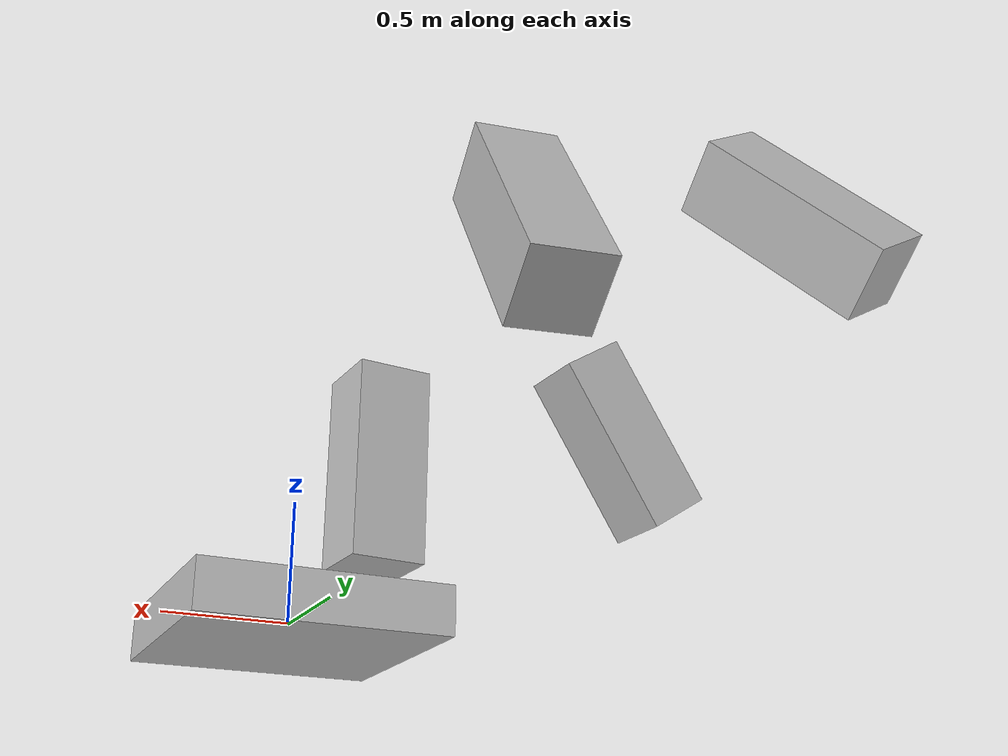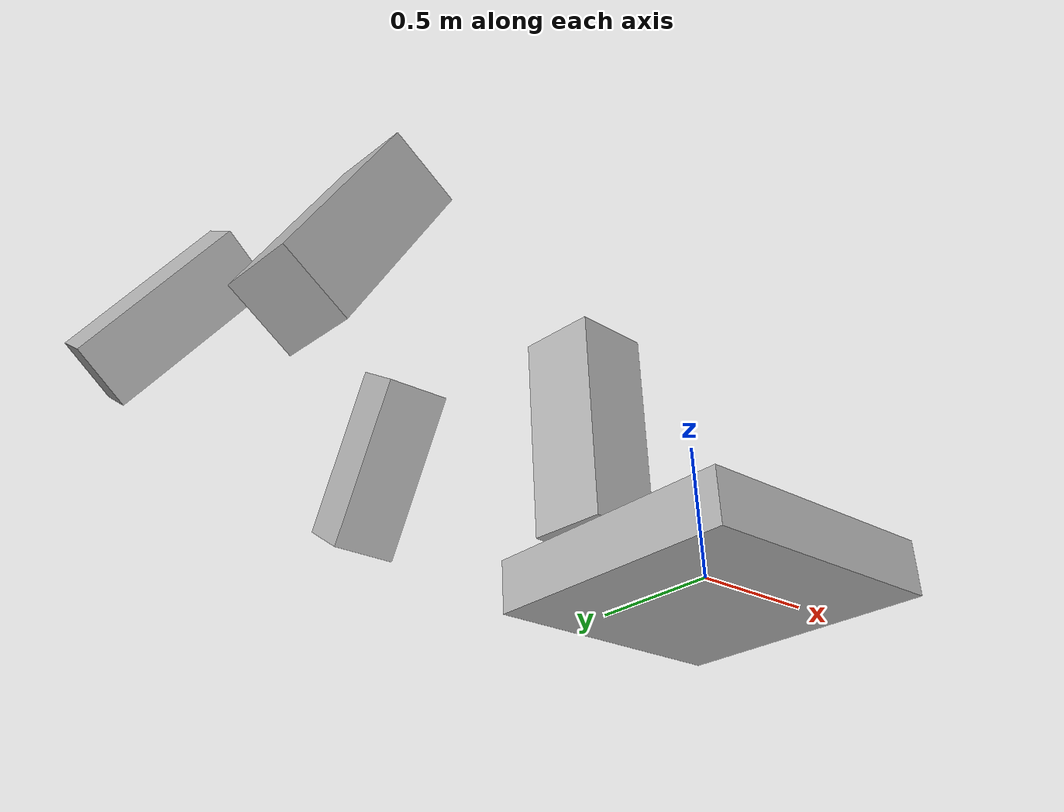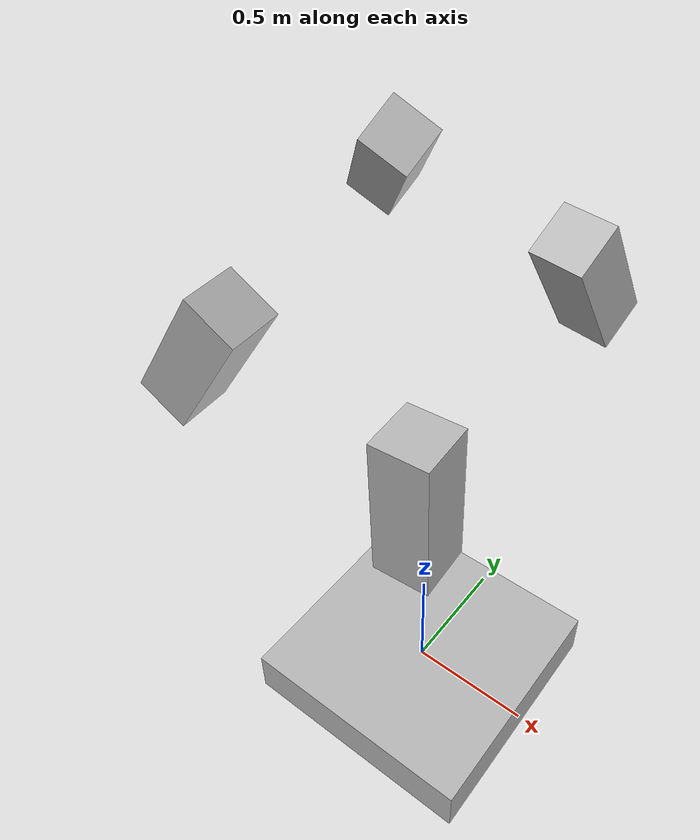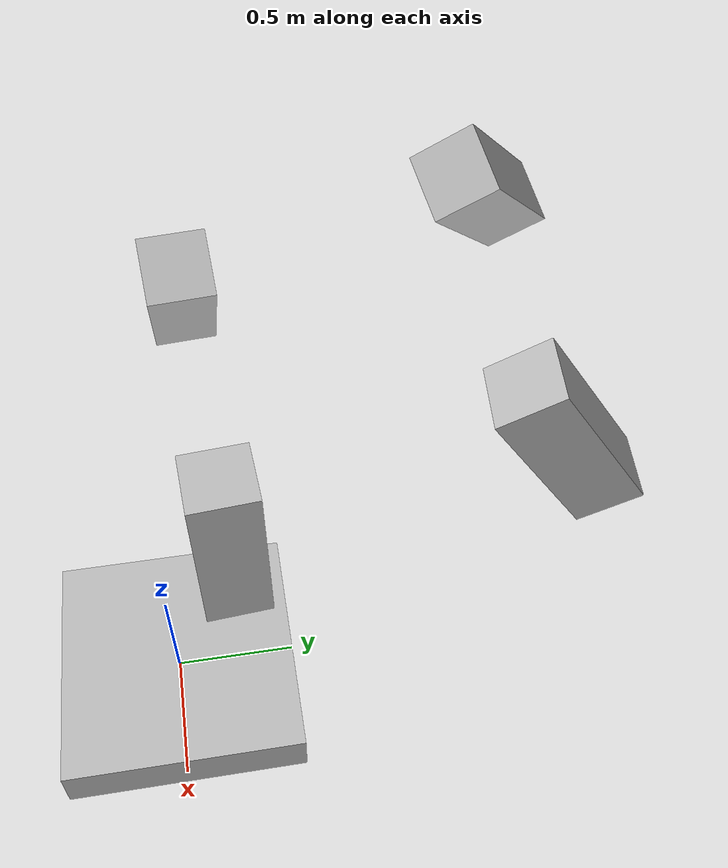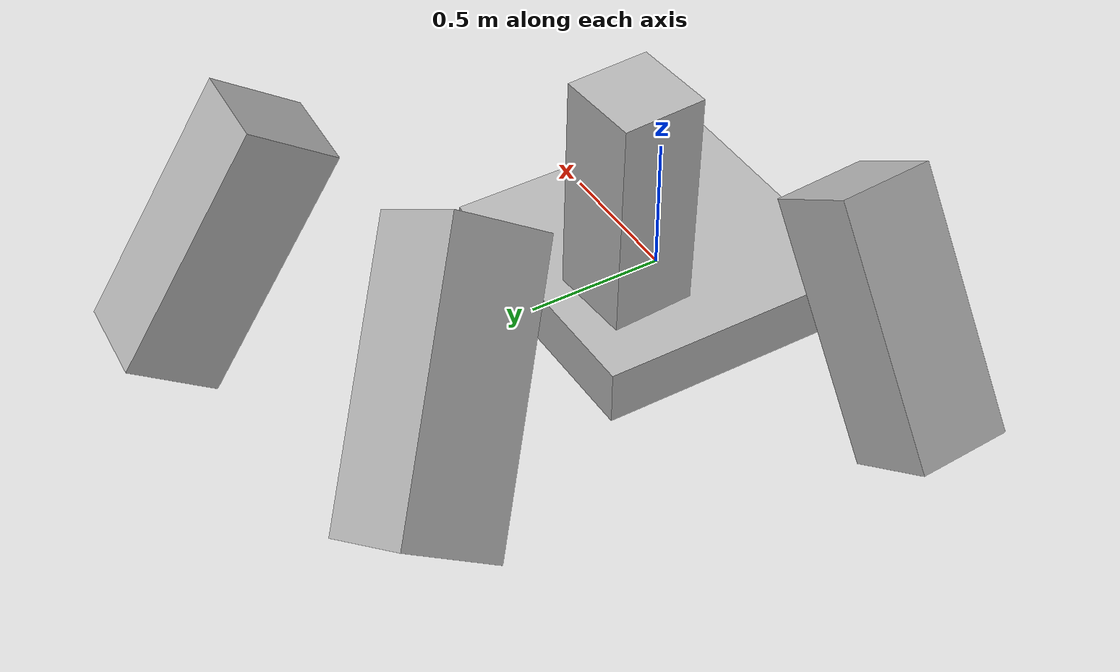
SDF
<sdf version='1.11'>
  <model name='lander'>
    <link name='base_link'>
      <inertial>
        <pose>0 0 0 0 0 0</pose>
        <mass>10</mass>
        <inertia>
          <ixx>1</ixx>
          <ixy>0</ixy>
          <ixz>0</ixz>
          <iyy>1</iyy>
          <iyz>0</iyz>
          <izz>1</izz>
        </inertia>
      </inertial>
      <visual name='base_link_visual'>
        <pose>0 0 0 0 0 0</pose>
        <geometry>
          <box>
            <size>1 1 0.20000000000000001</size>
          </box>
        </geometry>
      </visual>
    </link>
    <joint name='leg1_PrismaticJoint' type='prismatic'>
      <pose relative_to='base_link'>-0.24328179999999999 0.28071259999999998 0.58618700000000001 0.0094365000000000039 -0.010089299999999999 0.066407400000000019</pose>
      <parent>base_link</parent>
      <child>leg1_link</child>
      <axis>
        <xyz>0 0 1</xyz>
        <limit>
          <lower>0</lower>
          <upper>0.20000000000000001</upper>
          <effort>100</effort>
          <velocity>1</velocity>
        </limit>
        <dynamics>
          <spring_reference>0</spring_reference>
          <spring_stiffness>0</spring_stiffness>
        </dynamics>
      </axis>
    </joint>
    <link name='leg1_link'>
      <pose relative_to='leg1_PrismaticJoint'>0 0 0 0 0 0</pose>
      <inertial>
        <pose>0 0 0 0 0 0</pose>
        <mass>1</mass>
        <inertia>
          <ixx>0.10000000000000001</ixx>
          <ixy>0</ixy>
          <ixz>0</ixz>
          <iyy>0.10000000000000001</iyy>
          <iyz>0</iyz>
          <izz>0.10000000000000001</izz>
        </inertia>
      </inertial>
      <collision name='leg1_link_collision'>
        <pose>0 0 0 0 0 0</pose>
        <geometry>
          <box>
            <size>0.29999999999999999 0.29999999999999999 0.80000000000000004</size>
          </box>
        </geometry>
      </collision>
      <visual name='leg1_link_visual'>
        <pose>0 0 0 0 0 0</pose>
        <geometry>
          <box>
            <size>0.29999999999999999 0.29999999999999999 0.80000000000000004</size>
          </box>
        </geometry>
      </visual>
    </link>
    <joint name='leg2_PrismaticJoint' type='prismatic'>
      <pose relative_to='base_link'>-0.2313453 1.682129 1.0053042000000001 0.56972 0.041867200000000021 -0.091057600000000002</pose>
      <parent>base_link</parent>
      <child>leg2_link</child>
      <axis>
        <xyz>0 0 1</xyz>
        <limit>
          <lower>0</lower>
          <upper>0.20000000000000001</upper>
          <effort>100</effort>
          <velocity>1</velocity>
        </limit>
        <dynamics>
          <spring_reference>0</spring_reference>
          <spring_stiffness>0</spring_stiffness>
        </dynamics>
      </axis>
    </joint>
    <link name='leg2_link'>
      <pose relative_to='leg2_PrismaticJoint'>0 0 0 0 0 0</pose>
      <inertial>
        <pose>0 0 0 0 0 0</pose>
        <mass>1</mass>
        <inertia>
          <ixx>0.10000000000000001</ixx>
          <ixy>0</ixy>
          <ixz>0</ixz>
          <iyy>0.10000000000000001</iyy>
          <iyz>0</iyz>
          <izz>0.10000000000000001</izz>
        </inertia>
      </inertial>
      <collision name='leg2_link_collision'>
        <pose>0 0 0 0 0 0</pose>
        <geometry>
          <box>
            <size>0.29999999999999999 0.29999999999999999 0.80000000000000004</size>
          </box>
        </geometry>
      </collision>
      <visual name='leg2_link_visual'>
        <pose>0 0 0 0 0 0</pose>
        <geometry>
          <box>
            <size>0.29999999999999999 0.29999999999999999 0.80000000000000004</size>
          </box>
        </geometry>
      </visual>
    </link>
    <joint name='leg3_PrismaticJoint' type='prismatic'>
      <pose relative_to='base_link'>-1.4118276000000001 0.1897153 0.92373799999999995 0.0056381000000000157 0.57104020000000022 0.070904799999999976</pose>
      <parent>base_link</parent>
      <child>leg3_link</child>
      <axis>
        <xyz>0 0 1</xyz>
        <limit>
          <lower>0</lower>
          <upper>0.20000000000000001</upper>
          <effort>100</effort>
          <velocity>1</velocity>
        </limit>
        <dynamics>
          <spring_reference>0</spring_reference>
          <spring_stiffness>0</spring_stiffness>
        </dynamics>
      </axis>
    </joint>
    <link name='leg3_link'>
      <pose relative_to='leg3_PrismaticJoint'>0 0 0 0 0 0</pose>
      <inertial>
        <pose>0 0 0 0 0 0</pose>
        <mass>1</mass>
        <inertia>
          <ixx>0.10000000000000001</ixx>
          <ixy>0</ixy>
          <ixz>0</ixz>
          <iyy>0.10000000000000001</iyy>
          <iyz>0</iyz>
          <izz>0.10000000000000001</izz>
        </inertia>
      </inertial>
      <collision name='leg3_link_collision'>
        <pose>0 0 0 0 0 0</pose>
        <geometry>
          <box>
            <size>0.29999999999999999 0.29999999999999999 0.80000000000000004</size>
          </box>
        </geometry>
      </collision>
      <visual name='leg3_link_visual'>
        <pose>0 0 0 0 0 0</pose>
        <geometry>
          <box>
            <size>0.29999999999999999 0.29999999999999999 0.80000000000000004</size>
          </box>
        </geometry>
      </visual>
    </link>
    <joint name='leg4_PrismaticJoint' type='prismatic'>
      <pose relative_to='base_link'>-1.399891 1.5911317 1.3428552 0.66470650000000009 0.52082610000000018 0.25588159999999999</pose>
      <parent>base_link</parent>
      <child>leg4_link</child>
      <axis>
        <xyz>0 0 1</xyz>
        <limit>
          <lower>0</lower>
          <upper>0.20000000000000001</upper>
          <effort>100</effort>
          <velocity>1</velocity>
        </limit>
        <dynamics>
          <spring_reference>0</spring_reference>
          <spring_stiffness>0</spring_stiffness>
        </dynamics>
      </axis>
    </joint>
    <link name='leg4_link'>
      <pose relative_to='leg4_PrismaticJoint'>0 0 0 0 0 0</pose>
      <inertial>
        <pose>0 0 0 0 0 0</pose>
        <mass>1</mass>
        <inertia>
          <ixx>0.10000000000000001</ixx>
          <ixy>0</ixy>
          <ixz>0</ixz>
          <iyy>0.10000000000000001</iyy>
          <iyz>0</iyz>
          <izz>0.10000000000000001</izz>
        </inertia>
      </inertial>
      <collision name='leg4_link_collision'>
        <pose>0 0 0 0 0 0</pose>
        <geometry>
          <box>
            <size>0.29999999999999999 0.29999999999999999 0.80000000000000004</size>
          </box>
        </geometry>
      </collision>
      <visual name='leg4_link_visual'>
        <pose>0 0 0 0 0 0</pose>
        <geometry>
          <box>
            <size>0.29999999999999999 0.29999999999999999 0.80000000000000004</size>
          </box>
        </geometry>
      </visual>
    </link>
  </model>
</sdf>
